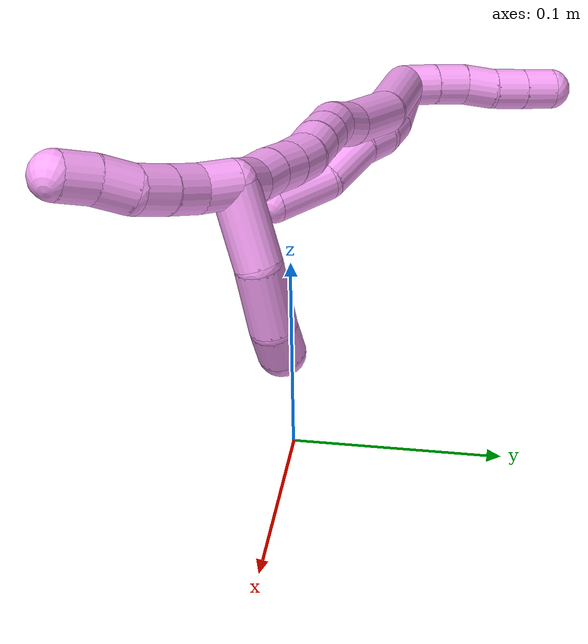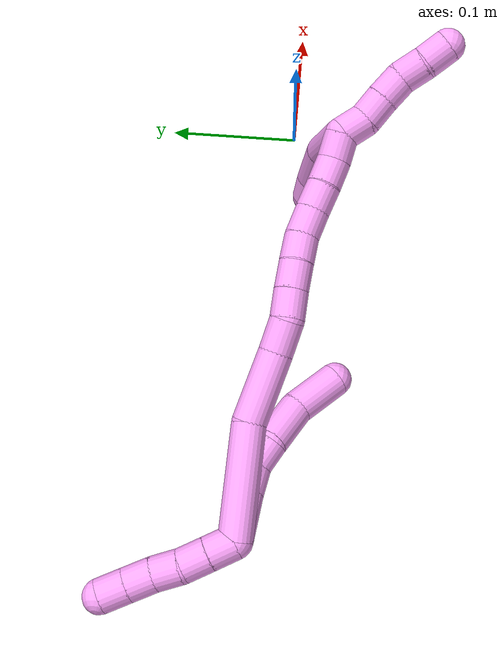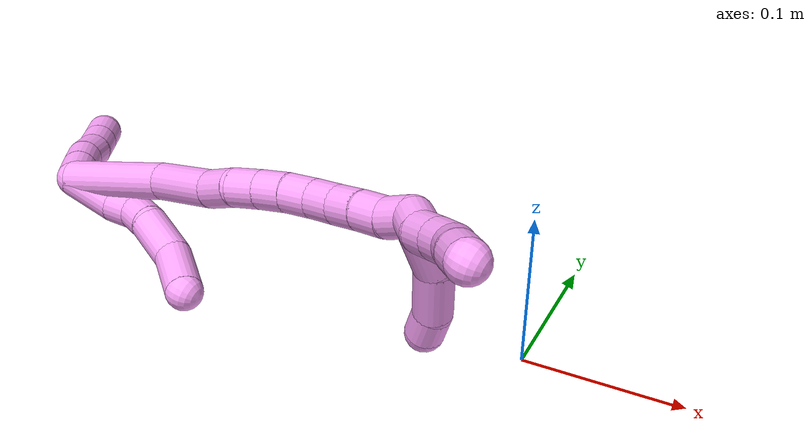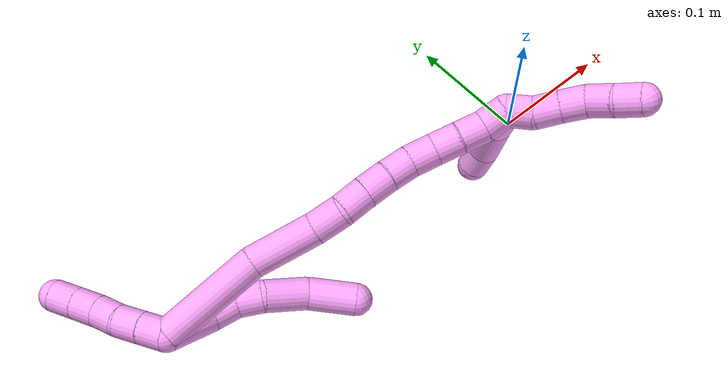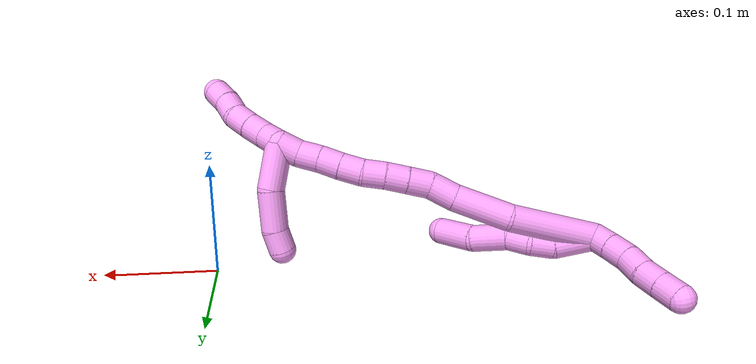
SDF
<sdf version="1.7">
 <world name="default">
  <model name="4">
   <static>0</static>
   <link name="4">
    <collision name="collision-cylinder-e_1_2_8">
     <pose>-0.000438 -0.000678 -0.01861 3.10517 -0.023537 -1.14731</pose>
     <geometry><cylinder><radius>0.0125</radius><length>0.037254</length></cylinder></geometry>
     <surface>
      <friction><ode><mu>1.16</mu><mu2>1.16</mu2><slip1>0</slip1><slip2>0</slip2></ode></friction>
      <contact><ode><kp>1e+06</kp><kd>1</kd><max_vel>0</max_vel><min_depth>0.001</min_depth></ode></contact>
     </surface>
    </collision>
    <visual name="visual-cylinder-e_1_2_8">
     <pose>-0.000438 -0.000678 -0.01861 3.10517 -0.023537 -1.14731</pose>
     <geometry><cylinder><radius>0.0125</radius><length>0.037254</length></cylinder></geometry>
     <material><ambient>1 0.65098 0.996078 1</ambient></material>
    </visual>
    <collision name="collision-cylinder-e_2_8_9">
     <pose>0.002433 -0.002076 -0.047156 3.06926 0.320768 2.70149</pose>
     <geometry><cylinder><radius>0.0125</radius><length>0.020998</length></cylinder></geometry>
     <surface>
      <friction><ode><mu>1.16</mu><mu2>1.16</mu2><slip1>0</slip1><slip2>0</slip2></ode></friction>
      <contact><ode><kp>1e+06</kp><kd>1</kd><max_vel>0</max_vel><min_depth>0.001</min_depth></ode></contact>
     </surface>
    </collision>
    <visual name="visual-cylinder-e_2_8_9">
     <pose>0.002433 -0.002076 -0.047156 3.06926 0.320768 2.70149</pose>
     <geometry><cylinder><radius>0.0125</radius><length>0.020998</length></cylinder></geometry>
     <material><ambient>1 0.65098 0.996078 1</ambient></material>
    </visual>
    <collision name="collision-cylinder-e_3_9_10">
     <pose>0.009146 -0.006688 -0.065803 2.72136 0.342568 1.36294</pose>
     <geometry><cylinder><radius>0.0125</radius><length>0.020255</length></cylinder></geometry>
     <surface>
      <friction><ode><mu>1.16</mu><mu2>1.16</mu2><slip1>0</slip1><slip2>0</slip2></ode></friction>
      <contact><ode><kp>1e+06</kp><kd>1</kd><max_vel>0</max_vel><min_depth>0.001</min_depth></ode></contact>
     </surface>
    </collision>
    <visual name="visual-cylinder-e_3_9_10">
     <pose>0.009146 -0.006688 -0.065803 2.72136 0.342568 1.36294</pose>
     <geometry><cylinder><radius>0.0125</radius><length>0.020255</length></cylinder></geometry>
     <material><ambient>1 0.65098 0.996078 1</ambient></material>
    </visual>
    <collision name="collision-cylinder-e_4_10_11">
     <pose>0.013009 -0.017616 -0.09017 2.71925 0.026905 0.125349</pose>
     <geometry><cylinder><radius>0.0125</radius><length>0.034347</length></cylinder></geometry>
     <surface>
      <friction><ode><mu>1.16</mu><mu2>1.16</mu2><slip1>0</slip1><slip2>0</slip2></ode></friction>
      <contact><ode><kp>1e+06</kp><kd>1</kd><max_vel>0</max_vel><min_depth>0.001</min_depth></ode></contact>
     </surface>
    </collision>
    <visual name="visual-cylinder-e_4_10_11">
     <pose>0.013009 -0.017616 -0.09017 2.71925 0.026905 0.125349</pose>
     <geometry><cylinder><radius>0.0125</radius><length>0.034347</length></cylinder></geometry>
     <material><ambient>1 0.65098 0.996078 1</ambient></material>
    </visual>
    <collision name="collision-cylinder-e_5_11_6">
     <pose>0.017037 -0.036632 -0.119568 2.42456 0.193193 0.506102</pose>
     <geometry><cylinder><radius>0.0125</radius><length>0.037147</length></cylinder></geometry>
     <surface>
      <friction><ode><mu>1.16</mu><mu2>1.16</mu2><slip1>0</slip1><slip2>0</slip2></ode></friction>
      <contact><ode><kp>1e+06</kp><kd>1</kd><max_vel>0</max_vel><min_depth>0.001</min_depth></ode></contact>
     </surface>
    </collision>
    <visual name="visual-cylinder-e_5_11_6">
     <pose>0.017037 -0.036632 -0.119568 2.42456 0.193193 0.506102</pose>
     <geometry><cylinder><radius>0.0125</radius><length>0.037147</length></cylinder></geometry>
     <material><ambient>1 0.65098 0.996078 1</ambient></material>
    </visual>
    <collision name="collision-cylinder-e_1_2_12">
     <pose>-0.003798 0.007836 0.004916 -1.01049 -0.389592 0.217404</pose>
     <geometry><cylinder><radius>0.0125</radius><length>0.02</length></cylinder></geometry>
     <surface>
      <friction><ode><mu>1.16</mu><mu2>1.16</mu2><slip1>0</slip1><slip2>0</slip2></ode></friction>
      <contact><ode><kp>1e+06</kp><kd>1</kd><max_vel>0</max_vel><min_depth>0.001</min_depth></ode></contact>
     </surface>
    </collision>
    <visual name="visual-cylinder-e_1_2_12">
     <pose>-0.003798 0.007836 0.004916 -1.01049 -0.389592 0.217404</pose>
     <geometry><cylinder><radius>0.0125</radius><length>0.02</length></cylinder></geometry>
     <material><ambient>1 0.65098 0.996078 1</ambient></material>
    </visual>
    <collision name="collision-cylinder-e_2_12_13">
     <pose>-0.011649 0.023483 0.014582 -1.02448 -0.417337 0.23702</pose>
     <geometry><cylinder><radius>0.0125</radius><length>0.02</length></cylinder></geometry>
     <surface>
      <friction><ode><mu>1.16</mu><mu2>1.16</mu2><slip1>0</slip1><slip2>0</slip2></ode></friction>
      <contact><ode><kp>1e+06</kp><kd>1</kd><max_vel>0</max_vel><min_depth>0.001</min_depth></ode></contact>
     </surface>
    </collision>
    <visual name="visual-cylinder-e_2_12_13">
     <pose>-0.011649 0.023483 0.014582 -1.02448 -0.417337 0.23702</pose>
     <geometry><cylinder><radius>0.0125</radius><length>0.02</length></cylinder></geometry>
     <material><ambient>1 0.65098 0.996078 1</ambient></material>
    </visual>
    <collision name="collision-cylinder-e_3_13_14">
     <pose>-0.020375 0.039589 0.022394 -1.21713 -0.486167 0.342207</pose>
     <geometry><cylinder><radius>0.0125</radius><length>0.02</length></cylinder></geometry>
     <surface>
      <friction><ode><mu>1.16</mu><mu2>1.16</mu2><slip1>0</slip1><slip2>0</slip2></ode></friction>
      <contact><ode><kp>1e+06</kp><kd>1</kd><max_vel>0</max_vel><min_depth>0.001</min_depth></ode></contact>
     </surface>
    </collision>
    <visual name="visual-cylinder-e_3_13_14">
     <pose>-0.020375 0.039589 0.022394 -1.21713 -0.486167 0.342207</pose>
     <geometry><cylinder><radius>0.0125</radius><length>0.02</length></cylinder></geometry>
     <material><ambient>1 0.65098 0.996078 1</ambient></material>
    </visual>
    <collision name="collision-cylinder-e_4_14_15">
     <pose>-0.02899 0.055952 0.029853 -1.07186 -0.405287 0.242854</pose>
     <geometry><cylinder><radius>0.0125</radius><length>0.02</length></cylinder></geometry>
     <surface>
      <friction><ode><mu>1.16</mu><mu2>1.16</mu2><slip1>0</slip1><slip2>0</slip2></ode></friction>
      <contact><ode><kp>1e+06</kp><kd>1</kd><max_vel>0</max_vel><min_depth>0.001</min_depth></ode></contact>
     </surface>
    </collision>
    <visual name="visual-cylinder-e_4_14_15">
     <pose>-0.02899 0.055952 0.029853 -1.07186 -0.405287 0.242854</pose>
     <geometry><cylinder><radius>0.0125</radius><length>0.02</length></cylinder></geometry>
     <material><ambient>1 0.65098 0.996078 1</ambient></material>
    </visual>
    <collision name="collision-cylinder-e_5_15_5">
     <pose>-0.036806 0.072089 0.038713 -1.06549 -0.397731 0.236539</pose>
     <geometry><cylinder><radius>0.0125</radius><length>0.02</length></cylinder></geometry>
     <surface>
      <friction><ode><mu>1.16</mu><mu2>1.16</mu2><slip1>0</slip1><slip2>0</slip2></ode></friction>
      <contact><ode><kp>1e+06</kp><kd>1</kd><max_vel>0</max_vel><min_depth>0.001</min_depth></ode></contact>
     </surface>
    </collision>
    <visual name="visual-cylinder-e_5_15_5">
     <pose>-0.036806 0.072089 0.038713 -1.06549 -0.397731 0.236539</pose>
     <geometry><cylinder><radius>0.0125</radius><length>0.02</length></cylinder></geometry>
     <material><ambient>1 0.65098 0.996078 1</ambient></material>
    </visual>
    <collision name="collision-cylinder-e_1_2_16">
     <pose>0.017467 0.004668 -0.036199 -3.01334 0.446347 -2.59012</pose>
     <geometry><cylinder><radius>0.0125</radius><length>0.080926</length></cylinder></geometry>
     <surface>
      <friction><ode><mu>1.16</mu><mu2>1.16</mu2><slip1>0</slip1><slip2>0</slip2></ode></friction>
      <contact><ode><kp>1e+06</kp><kd>1</kd><max_vel>0</max_vel><min_depth>0.001</min_depth></ode></contact>
     </surface>
    </collision>
    <visual name="visual-cylinder-e_1_2_16">
     <pose>0.017467 0.004668 -0.036199 -3.01334 0.446347 -2.59012</pose>
     <geometry><cylinder><radius>0.0125</radius><length>0.080926</length></cylinder></geometry>
     <material><ambient>1 0.65098 0.996078 1</ambient></material>
    </visual>
    <collision name="collision-cylinder-e_2_16_17">
     <pose>0.048145 0.006044 -0.094656 2.99472 0.530939 2.61307</pose>
     <geometry><cylinder><radius>0.0125</radius><length>0.052183</length></cylinder></geometry>
     <surface>
      <friction><ode><mu>1.16</mu><mu2>1.16</mu2><slip1>0</slip1><slip2>0</slip2></ode></friction>
      <contact><ode><kp>1e+06</kp><kd>1</kd><max_vel>0</max_vel><min_depth>0.001</min_depth></ode></contact>
     </surface>
    </collision>
    <visual name="visual-cylinder-e_2_16_17">
     <pose>0.048145 0.006044 -0.094656 2.99472 0.530939 2.61307</pose>
     <geometry><cylinder><radius>0.0125</radius><length>0.052183</length></cylinder></geometry>
     <material><ambient>1 0.65098 0.996078 1</ambient></material>
    </visual>
    <collision name="collision-cylinder-e_3_17_18">
     <pose>0.068968 0.001738 -0.126404 3.0352 0.673224 2.8396</pose>
     <geometry><cylinder><radius>0.0125</radius><length>0.024418</length></cylinder></geometry>
     <surface>
      <friction><ode><mu>1.16</mu><mu2>1.16</mu2><slip1>0</slip1><slip2>0</slip2></ode></friction>
      <contact><ode><kp>1e+06</kp><kd>1</kd><max_vel>0</max_vel><min_depth>0.001</min_depth></ode></contact>
     </surface>
    </collision>
    <visual name="visual-cylinder-e_3_17_18">
     <pose>0.068968 0.001738 -0.126404 3.0352 0.673224 2.8396</pose>
     <geometry><cylinder><radius>0.0125</radius><length>0.024418</length></cylinder></geometry>
     <material><ambient>1 0.65098 0.996078 1</ambient></material>
    </visual>
    <collision name="collision-cylinder-e_4_18_19">
     <pose>0.080956 0.001638 -0.14545 -3.04623 0.427634 -2.70895</pose>
     <geometry><cylinder><radius>0.0125</radius><length>0.021097</length></cylinder></geometry>
     <surface>
      <friction><ode><mu>1.16</mu><mu2>1.16</mu2><slip1>0</slip1><slip2>0</slip2></ode></friction>
      <contact><ode><kp>1e+06</kp><kd>1</kd><max_vel>0</max_vel><min_depth>0.001</min_depth></ode></contact>
     </surface>
    </collision>
    <visual name="visual-cylinder-e_4_18_19">
     <pose>0.080956 0.001638 -0.14545 -3.04623 0.427634 -2.70895</pose>
     <geometry><cylinder><radius>0.0125</radius><length>0.021097</length></cylinder></geometry>
     <material><ambient>1 0.65098 0.996078 1</ambient></material>
    </visual>
    <collision name="collision-cylinder-e_5_19_20">
     <pose>0.089492 0.002988 -0.164327 -3.0949 0.419518 -2.92311</pose>
     <geometry><cylinder><radius>0.0125</radius><length>0.020436</length></cylinder></geometry>
     <surface>
      <friction><ode><mu>1.16</mu><mu2>1.16</mu2><slip1>0</slip1><slip2>0</slip2></ode></friction>
      <contact><ode><kp>1e+06</kp><kd>1</kd><max_vel>0</max_vel><min_depth>0.001</min_depth></ode></contact>
     </surface>
    </collision>
    <visual name="visual-cylinder-e_5_19_20">
     <pose>0.089492 0.002988 -0.164327 -3.0949 0.419518 -2.92311</pose>
     <geometry><cylinder><radius>0.0125</radius><length>0.020436</length></cylinder></geometry>
     <material><ambient>1 0.65098 0.996078 1</ambient></material>
    </visual>
    <collision name="collision-cylinder-e_6_20_21">
     <pose>0.096977 0.003554 -0.183112 -3.1278 0.3376 -3.06071</pose>
     <geometry><cylinder><radius>0.0125</radius><length>0.020059</length></cylinder></geometry>
     <surface>
      <friction><ode><mu>1.16</mu><mu2>1.16</mu2><slip1>0</slip1><slip2>0</slip2></ode></friction>
      <contact><ode><kp>1e+06</kp><kd>1</kd><max_vel>0</max_vel><min_depth>0.001</min_depth></ode></contact>
     </surface>
    </collision>
    <visual name="visual-cylinder-e_6_20_21">
     <pose>0.096977 0.003554 -0.183112 -3.1278 0.3376 -3.06071</pose>
     <geometry><cylinder><radius>0.0125</radius><length>0.020059</length></cylinder></geometry>
     <material><ambient>1 0.65098 0.996078 1</ambient></material>
    </visual>
    <collision name="collision-cylinder-e_7_21_22">
     <pose>0.104804 0.002112 -0.201649 2.97007 0.454927 2.43035</pose>
     <geometry><cylinder><radius>0.0125</radius><length>0.020505</length></cylinder></geometry>
     <surface>
      <friction><ode><mu>1.16</mu><mu2>1.16</mu2><slip1>0</slip1><slip2>0</slip2></ode></friction>
      <contact><ode><kp>1e+06</kp><kd>1</kd><max_vel>0</max_vel><min_depth>0.001</min_depth></ode></contact>
     </surface>
    </collision>
    <visual name="visual-cylinder-e_7_21_22">
     <pose>0.104804 0.002112 -0.201649 2.97007 0.454927 2.43035</pose>
     <geometry><cylinder><radius>0.0125</radius><length>0.020505</length></cylinder></geometry>
     <material><ambient>1 0.65098 0.996078 1</ambient></material>
    </visual>
    <collision name="collision-cylinder-e_8_22_23">
     <pose>0.114199 -0.001298 -0.21931 2.93063 0.50816 2.36735</pose>
     <geometry><cylinder><radius>0.0125</radius><length>0.020102</length></cylinder></geometry>
     <surface>
      <friction><ode><mu>1.16</mu><mu2>1.16</mu2><slip1>0</slip1><slip2>0</slip2></ode></friction>
      <contact><ode><kp>1e+06</kp><kd>1</kd><max_vel>0</max_vel><min_depth>0.001</min_depth></ode></contact>
     </surface>
    </collision>
    <visual name="visual-cylinder-e_8_22_23">
     <pose>0.114199 -0.001298 -0.21931 2.93063 0.50816 2.36735</pose>
     <geometry><cylinder><radius>0.0125</radius><length>0.020102</length></cylinder></geometry>
     <material><ambient>1 0.65098 0.996078 1</ambient></material>
    </visual>
    <collision name="collision-cylinder-e_9_23_24">
     <pose>0.123261 -0.004708 -0.236895 2.96875 0.428383 2.38356</pose>
     <geometry><cylinder><radius>0.0125</radius><length>0.020084</length></cylinder></geometry>
     <surface>
      <friction><ode><mu>1.16</mu><mu2>1.16</mu2><slip1>0</slip1><slip2>0</slip2></ode></friction>
      <contact><ode><kp>1e+06</kp><kd>1</kd><max_vel>0</max_vel><min_depth>0.001</min_depth></ode></contact>
     </surface>
    </collision>
    <visual name="visual-cylinder-e_9_23_24">
     <pose>0.123261 -0.004708 -0.236895 2.96875 0.428383 2.38356</pose>
     <geometry><cylinder><radius>0.0125</radius><length>0.020084</length></cylinder></geometry>
     <material><ambient>1 0.65098 0.996078 1</ambient></material>
    </visual>
    <collision name="collision-cylinder-e_10_24_1">
     <pose>0.133648 -0.006703 -0.253836 3.08822 0.663336 2.9869</pose>
     <geometry><cylinder><radius>0.0125</radius><length>0.020189</length></cylinder></geometry>
     <surface>
      <friction><ode><mu>1.16</mu><mu2>1.16</mu2><slip1>0</slip1><slip2>0</slip2></ode></friction>
      <contact><ode><kp>1e+06</kp><kd>1</kd><max_vel>0</max_vel><min_depth>0.001</min_depth></ode></contact>
     </surface>
    </collision>
    <visual name="visual-cylinder-e_10_24_1">
     <pose>0.133648 -0.006703 -0.253836 3.08822 0.663336 2.9869</pose>
     <geometry><cylinder><radius>0.0125</radius><length>0.020189</length></cylinder></geometry>
     <material><ambient>1 0.65098 0.996078 1</ambient></material>
    </visual>
    <collision name="collision-cylinder-e_1_1_25">
     <pose>0.120506 -0.003892 -0.269767 -2.75677 -1.15191 2.55868</pose>
     <geometry><cylinder><radius>0.0125</radius><length>0.042379</length></cylinder></geometry>
     <surface>
      <friction><ode><mu>1.16</mu><mu2>1.16</mu2><slip1>0</slip1><slip2>0</slip2></ode></friction>
      <contact><ode><kp>1e+06</kp><kd>1</kd><max_vel>0</max_vel><min_depth>0.001</min_depth></ode></contact>
     </surface>
    </collision>
    <visual name="visual-cylinder-e_1_1_25">
     <pose>0.120506 -0.003892 -0.269767 -2.75677 -1.15191 2.55868</pose>
     <geometry><cylinder><radius>0.0125</radius><length>0.042379</length></cylinder></geometry>
     <material><ambient>1 0.65098 0.996078 1</ambient></material>
    </visual>
    <collision name="collision-cylinder-e_2_25_26">
     <pose>0.082624 -0.000918 -0.280212 3.0357 -1.43823 -3.02068</pose>
     <geometry><cylinder><radius>0.0125</radius><length>0.037377</length></cylinder></geometry>
     <surface>
      <friction><ode><mu>1.16</mu><mu2>1.16</mu2><slip1>0</slip1><slip2>0</slip2></ode></friction>
      <contact><ode><kp>1e+06</kp><kd>1</kd><max_vel>0</max_vel><min_depth>0.001</min_depth></ode></contact>
     </surface>
    </collision>
    <visual name="visual-cylinder-e_2_25_26">
     <pose>0.082624 -0.000918 -0.280212 3.0357 -1.43823 -3.02068</pose>
     <geometry><cylinder><radius>0.0125</radius><length>0.037377</length></cylinder></geometry>
     <material><ambient>1 0.65098 0.996078 1</ambient></material>
    </visual>
    <collision name="collision-cylinder-e_3_26_4">
     <pose>0.054047 -0.001664 -0.281589 0.42197 -1.45363 -0.376375</pose>
     <geometry><cylinder><radius>0.0125</radius><length>0.020244</length></cylinder></geometry>
     <surface>
      <friction><ode><mu>1.16</mu><mu2>1.16</mu2><slip1>0</slip1><slip2>0</slip2></ode></friction>
      <contact><ode><kp>1e+06</kp><kd>1</kd><max_vel>0</max_vel><min_depth>0.001</min_depth></ode></contact>
     </surface>
    </collision>
    <visual name="visual-cylinder-e_3_26_4">
     <pose>0.054047 -0.001664 -0.281589 0.42197 -1.45363 -0.376375</pose>
     <geometry><cylinder><radius>0.0125</radius><length>0.020244</length></cylinder></geometry>
     <material><ambient>1 0.65098 0.996078 1</ambient></material>
    </visual>
    <collision name="collision-cylinder-e_1_1_27">
     <pose>0.143695 -0.014023 -0.267924 2.29878 0.393202 0.836249</pose>
     <geometry><cylinder><radius>0.0125</radius><length>0.02</length></cylinder></geometry>
     <surface>
      <friction><ode><mu>1.16</mu><mu2>1.16</mu2><slip1>0</slip1><slip2>0</slip2></ode></friction>
      <contact><ode><kp>1e+06</kp><kd>1</kd><max_vel>0</max_vel><min_depth>0.001</min_depth></ode></contact>
     </surface>
    </collision>
    <visual name="visual-cylinder-e_1_1_27">
     <pose>0.143695 -0.014023 -0.267924 2.29878 0.393202 0.836249</pose>
     <geometry><cylinder><radius>0.0125</radius><length>0.02</length></cylinder></geometry>
     <material><ambient>1 0.65098 0.996078 1</ambient></material>
    </visual>
    <collision name="collision-cylinder-e_2_27_28">
     <pose>0.153247 -0.025185 -0.281075 2.59452 0.609028 1.68404</pose>
     <geometry><cylinder><radius>0.0125</radius><length>0.02</length></cylinder></geometry>
     <surface>
      <friction><ode><mu>1.16</mu><mu2>1.16</mu2><slip1>0</slip1><slip2>0</slip2></ode></friction>
      <contact><ode><kp>1e+06</kp><kd>1</kd><max_vel>0</max_vel><min_depth>0.001</min_depth></ode></contact>
     </surface>
    </collision>
    <visual name="visual-cylinder-e_2_27_28">
     <pose>0.153247 -0.025185 -0.281075 2.59452 0.609028 1.68404</pose>
     <geometry><cylinder><radius>0.0125</radius><length>0.02</length></cylinder></geometry>
     <material><ambient>1 0.65098 0.996078 1</ambient></material>
    </visual>
    <collision name="collision-cylinder-e_3_28_29">
     <pose>0.164842 -0.034176 -0.294652 2.51837 0.627795 1.57861</pose>
     <geometry><cylinder><radius>0.0125</radius><length>0.02</length></cylinder></geometry>
     <surface>
      <friction><ode><mu>1.16</mu><mu2>1.16</mu2><slip1>0</slip1><slip2>0</slip2></ode></friction>
      <contact><ode><kp>1e+06</kp><kd>1</kd><max_vel>0</max_vel><min_depth>0.001</min_depth></ode></contact>
     </surface>
    </collision>
    <visual name="visual-cylinder-e_3_28_29">
     <pose>0.164842 -0.034176 -0.294652 2.51837 0.627795 1.57861</pose>
     <geometry><cylinder><radius>0.0125</radius><length>0.02</length></cylinder></geometry>
     <material><ambient>1 0.65098 0.996078 1</ambient></material>
    </visual>
    <collision name="collision-cylinder-e_4_29_30">
     <pose>0.177261 -0.04546 -0.304981 2.09098 0.71356 1.14295</pose>
     <geometry><cylinder><radius>0.0125</radius><length>0.02</length></cylinder></geometry>
     <surface>
      <friction><ode><mu>1.16</mu><mu2>1.16</mu2><slip1>0</slip1><slip2>0</slip2></ode></friction>
      <contact><ode><kp>1e+06</kp><kd>1</kd><max_vel>0</max_vel><min_depth>0.001</min_depth></ode></contact>
     </surface>
    </collision>
    <visual name="visual-cylinder-e_4_29_30">
     <pose>0.177261 -0.04546 -0.304981 2.09098 0.71356 1.14295</pose>
     <geometry><cylinder><radius>0.0125</radius><length>0.02</length></cylinder></geometry>
     <material><ambient>1 0.65098 0.996078 1</ambient></material>
    </visual>
    <collision name="collision-cylinder-e_5_30_3">
     <pose>0.189624 -0.058253 -0.313965 2.26856 0.620897 1.20481</pose>
     <geometry><cylinder><radius>0.0125</radius><length>0.02</length></cylinder></geometry>
     <surface>
      <friction><ode><mu>1.16</mu><mu2>1.16</mu2><slip1>0</slip1><slip2>0</slip2></ode></friction>
      <contact><ode><kp>1e+06</kp><kd>1</kd><max_vel>0</max_vel><min_depth>0.001</min_depth></ode></contact>
     </surface>
    </collision>
    <visual name="visual-cylinder-e_5_30_3">
     <pose>0.189624 -0.058253 -0.313965 2.26856 0.620897 1.20481</pose>
     <geometry><cylinder><radius>0.0125</radius><length>0.02</length></cylinder></geometry>
     <material><ambient>1 0.65098 0.996078 1</ambient></material>
    </visual>
    <collision name="collision-sphere-3">
     <pose>0.195441 -0.064485 -0.319191 0 -0 0</pose>
     <geometry><sphere><radius>0.0125</radius></sphere></geometry>
     <surface>
      <friction><ode><mu>1.16</mu><mu2>1.16</mu2><slip1>0</slip1><slip2>0</slip2></ode></friction>
      <contact><ode><kp>1e+06</kp><kd>1</kd><max_vel>0</max_vel><min_depth>0.001</min_depth></ode></contact>
     </surface>
    </collision>
    <visual name="visual-sphere-3">
     <pose>0.195441 -0.064485 -0.319191 0 -0 0</pose>
     <geometry><sphere><radius>0.0125</radius></sphere></geometry>
     <material><ambient>1 0.65098 0.996078 1</ambient></material>
    </visual>
    <collision name="collision-sphere-30">
     <pose>0.183806 -0.05202 -0.308739 0 -0 0</pose>
     <geometry><sphere><radius>0.0125</radius></sphere></geometry>
     <surface>
      <friction><ode><mu>1.16</mu><mu2>1.16</mu2><slip1>0</slip1><slip2>0</slip2></ode></friction>
      <contact><ode><kp>1e+06</kp><kd>1</kd><max_vel>0</max_vel><min_depth>0.001</min_depth></ode></contact>
     </surface>
    </collision>
    <visual name="visual-sphere-30">
     <pose>0.183806 -0.05202 -0.308739 0 -0 0</pose>
     <geometry><sphere><radius>0.0125</radius></sphere></geometry>
     <material><ambient>1 0.65098 0.996078 1</ambient></material>
    </visual>
    <collision name="collision-sphere-29">
     <pose>0.170715 -0.038899 -0.301224 0 -0 0</pose>
     <geometry><sphere><radius>0.0125</radius></sphere></geometry>
     <surface>
      <friction><ode><mu>1.16</mu><mu2>1.16</mu2><slip1>0</slip1><slip2>0</slip2></ode></friction>
      <contact><ode><kp>1e+06</kp><kd>1</kd><max_vel>0</max_vel><min_depth>0.001</min_depth></ode></contact>
     </surface>
    </collision>
    <visual name="visual-sphere-29">
     <pose>0.170715 -0.038899 -0.301224 0 -0 0</pose>
     <geometry><sphere><radius>0.0125</radius></sphere></geometry>
     <material><ambient>1 0.65098 0.996078 1</ambient></material>
    </visual>
    <collision name="collision-sphere-28">
     <pose>0.158968 -0.029452 -0.28808 0 -0 0</pose>
     <geometry><sphere><radius>0.0125</radius></sphere></geometry>
     <surface>
      <friction><ode><mu>1.16</mu><mu2>1.16</mu2><slip1>0</slip1><slip2>0</slip2></ode></friction>
      <contact><ode><kp>1e+06</kp><kd>1</kd><max_vel>0</max_vel><min_depth>0.001</min_depth></ode></contact>
     </surface>
    </collision>
    <visual name="visual-sphere-28">
     <pose>0.158968 -0.029452 -0.28808 0 -0 0</pose>
     <geometry><sphere><radius>0.0125</radius></sphere></geometry>
     <material><ambient>1 0.65098 0.996078 1</ambient></material>
    </visual>
    <collision name="collision-sphere-27">
     <pose>0.147527 -0.020919 -0.27407 0 -0 0</pose>
     <geometry><sphere><radius>0.0125</radius></sphere></geometry>
     <surface>
      <friction><ode><mu>1.16</mu><mu2>1.16</mu2><slip1>0</slip1><slip2>0</slip2></ode></friction>
      <contact><ode><kp>1e+06</kp><kd>1</kd><max_vel>0</max_vel><min_depth>0.001</min_depth></ode></contact>
     </surface>
    </collision>
    <visual name="visual-sphere-27">
     <pose>0.147527 -0.020919 -0.27407 0 -0 0</pose>
     <geometry><sphere><radius>0.0125</radius></sphere></geometry>
     <material><ambient>1 0.65098 0.996078 1</ambient></material>
    </visual>
    <collision name="collision-sphere-4">
     <pose>0.043995 -0.002148 -0.280509 0 -0 0</pose>
     <geometry><sphere><radius>0.0125</radius></sphere></geometry>
     <surface>
      <friction><ode><mu>1.16</mu><mu2>1.16</mu2><slip1>0</slip1><slip2>0</slip2></ode></friction>
      <contact><ode><kp>1e+06</kp><kd>1</kd><max_vel>0</max_vel><min_depth>0.001</min_depth></ode></contact>
     </surface>
    </collision>
    <visual name="visual-sphere-4">
     <pose>0.043995 -0.002148 -0.280509 0 -0 0</pose>
     <geometry><sphere><radius>0.0125</radius></sphere></geometry>
     <material><ambient>1 0.65098 0.996078 1</ambient></material>
    </visual>
    <collision name="collision-sphere-26">
     <pose>0.0641 -0.001179 -0.282668 0 -0 0</pose>
     <geometry><sphere><radius>0.0125</radius></sphere></geometry>
     <surface>
      <friction><ode><mu>1.16</mu><mu2>1.16</mu2><slip1>0</slip1><slip2>0</slip2></ode></friction>
      <contact><ode><kp>1e+06</kp><kd>1</kd><max_vel>0</max_vel><min_depth>0.001</min_depth></ode></contact>
     </surface>
    </collision>
    <visual name="visual-sphere-26">
     <pose>0.0641 -0.001179 -0.282668 0 -0 0</pose>
     <geometry><sphere><radius>0.0125</radius></sphere></geometry>
     <material><ambient>1 0.65098 0.996078 1</ambient></material>
    </visual>
    <collision name="collision-sphere-25">
     <pose>0.101148 -0.000657 -0.277755 0 -0 0</pose>
     <geometry><sphere><radius>0.0125</radius></sphere></geometry>
     <surface>
      <friction><ode><mu>1.16</mu><mu2>1.16</mu2><slip1>0</slip1><slip2>0</slip2></ode></friction>
      <contact><ode><kp>1e+06</kp><kd>1</kd><max_vel>0</max_vel><min_depth>0.001</min_depth></ode></contact>
     </surface>
    </collision>
    <visual name="visual-sphere-25">
     <pose>0.101148 -0.000657 -0.277755 0 -0 0</pose>
     <geometry><sphere><radius>0.0125</radius></sphere></geometry>
     <material><ambient>1 0.65098 0.996078 1</ambient></material>
    </visual>
    <collision name="collision-sphere-1">
     <pose>0.139864 -0.007128 -0.261778 0 -0 0</pose>
     <geometry><sphere><radius>0.0125</radius></sphere></geometry>
     <surface>
      <friction><ode><mu>1.16</mu><mu2>1.16</mu2><slip1>0</slip1><slip2>0</slip2></ode></friction>
      <contact><ode><kp>1e+06</kp><kd>1</kd><max_vel>0</max_vel><min_depth>0.001</min_depth></ode></contact>
     </surface>
    </collision>
    <visual name="visual-sphere-1">
     <pose>0.139864 -0.007128 -0.261778 0 -0 0</pose>
     <geometry><sphere><radius>0.0125</radius></sphere></geometry>
     <material><ambient>1 0.65098 0.996078 1</ambient></material>
    </visual>
    <collision name="collision-sphere-24">
     <pose>0.127432 -0.006279 -0.245893 0 -0 0</pose>
     <geometry><sphere><radius>0.0125</radius></sphere></geometry>
     <surface>
      <friction><ode><mu>1.16</mu><mu2>1.16</mu2><slip1>0</slip1><slip2>0</slip2></ode></friction>
      <contact><ode><kp>1e+06</kp><kd>1</kd><max_vel>0</max_vel><min_depth>0.001</min_depth></ode></contact>
     </surface>
    </collision>
    <visual name="visual-sphere-24">
     <pose>0.127432 -0.006279 -0.245893 0 -0 0</pose>
     <geometry><sphere><radius>0.0125</radius></sphere></geometry>
     <material><ambient>1 0.65098 0.996078 1</ambient></material>
    </visual>
    <collision name="collision-sphere-23">
     <pose>0.11909 -0.003137 -0.227896 0 -0 0</pose>
     <geometry><sphere><radius>0.0125</radius></sphere></geometry>
     <surface>
      <friction><ode><mu>1.16</mu><mu2>1.16</mu2><slip1>0</slip1><slip2>0</slip2></ode></friction>
      <contact><ode><kp>1e+06</kp><kd>1</kd><max_vel>0</max_vel><min_depth>0.001</min_depth></ode></contact>
     </surface>
    </collision>
    <visual name="visual-sphere-23">
     <pose>0.11909 -0.003137 -0.227896 0 -0 0</pose>
     <geometry><sphere><radius>0.0125</radius></sphere></geometry>
     <material><ambient>1 0.65098 0.996078 1</ambient></material>
    </visual>
    <collision name="collision-sphere-22">
     <pose>0.109309 0.00054 -0.210724 0 -0 0</pose>
     <geometry><sphere><radius>0.0125</radius></sphere></geometry>
     <surface>
      <friction><ode><mu>1.16</mu><mu2>1.16</mu2><slip1>0</slip1><slip2>0</slip2></ode></friction>
      <contact><ode><kp>1e+06</kp><kd>1</kd><max_vel>0</max_vel><min_depth>0.001</min_depth></ode></contact>
     </surface>
    </collision>
    <visual name="visual-sphere-22">
     <pose>0.109309 0.00054 -0.210724 0 -0 0</pose>
     <geometry><sphere><radius>0.0125</radius></sphere></geometry>
     <material><ambient>1 0.65098 0.996078 1</ambient></material>
    </visual>
    <collision name="collision-sphere-21">
     <pose>0.100299 0.003684 -0.192575 0 -0 0</pose>
     <geometry><sphere><radius>0.0125</radius></sphere></geometry>
     <surface>
      <friction><ode><mu>1.16</mu><mu2>1.16</mu2><slip1>0</slip1><slip2>0</slip2></ode></friction>
      <contact><ode><kp>1e+06</kp><kd>1</kd><max_vel>0</max_vel><min_depth>0.001</min_depth></ode></contact>
     </surface>
    </collision>
    <visual name="visual-sphere-21">
     <pose>0.100299 0.003684 -0.192575 0 -0 0</pose>
     <geometry><sphere><radius>0.0125</radius></sphere></geometry>
     <material><ambient>1 0.65098 0.996078 1</ambient></material>
    </visual>
    <collision name="collision-sphere-6">
     <pose>0.020603 -0.04861 -0.133308 0 -0 0</pose>
     <geometry><sphere><radius>0.0125</radius></sphere></geometry>
     <surface>
      <friction><ode><mu>1.16</mu><mu2>1.16</mu2><slip1>0</slip1><slip2>0</slip2></ode></friction>
      <contact><ode><kp>1e+06</kp><kd>1</kd><max_vel>0</max_vel><min_depth>0.001</min_depth></ode></contact>
     </surface>
    </collision>
    <visual name="visual-sphere-6">
     <pose>0.020603 -0.04861 -0.133308 0 -0 0</pose>
     <geometry><sphere><radius>0.0125</radius></sphere></geometry>
     <material><ambient>1 0.65098 0.996078 1</ambient></material>
    </visual>
    <collision name="collision-sphere-11">
     <pose>0.013471 -0.024653 -0.105829 0 -0 0</pose>
     <geometry><sphere><radius>0.0125</radius></sphere></geometry>
     <surface>
      <friction><ode><mu>1.16</mu><mu2>1.16</mu2><slip1>0</slip1><slip2>0</slip2></ode></friction>
      <contact><ode><kp>1e+06</kp><kd>1</kd><max_vel>0</max_vel><min_depth>0.001</min_depth></ode></contact>
     </surface>
    </collision>
    <visual name="visual-sphere-11">
     <pose>0.013471 -0.024653 -0.105829 0 -0 0</pose>
     <geometry><sphere><radius>0.0125</radius></sphere></geometry>
     <material><ambient>1 0.65098 0.996078 1</ambient></material>
    </visual>
    <collision name="collision-sphere-10">
     <pose>0.012547 -0.01058 -0.074511 0 -0 0</pose>
     <geometry><sphere><radius>0.0125</radius></sphere></geometry>
     <surface>
      <friction><ode><mu>1.16</mu><mu2>1.16</mu2><slip1>0</slip1><slip2>0</slip2></ode></friction>
      <contact><ode><kp>1e+06</kp><kd>1</kd><max_vel>0</max_vel><min_depth>0.001</min_depth></ode></contact>
     </surface>
    </collision>
    <visual name="visual-sphere-10">
     <pose>0.012547 -0.01058 -0.074511 0 -0 0</pose>
     <geometry><sphere><radius>0.0125</radius></sphere></geometry>
     <material><ambient>1 0.65098 0.996078 1</ambient></material>
    </visual>
    <collision name="collision-sphere-9">
     <pose>0.005744 -0.002796 -0.057094 0 -0 0</pose>
     <geometry><sphere><radius>0.0125</radius></sphere></geometry>
     <surface>
      <friction><ode><mu>1.16</mu><mu2>1.16</mu2><slip1>0</slip1><slip2>0</slip2></ode></friction>
      <contact><ode><kp>1e+06</kp><kd>1</kd><max_vel>0</max_vel><min_depth>0.001</min_depth></ode></contact>
     </surface>
    </collision>
    <visual name="visual-sphere-9">
     <pose>0.005744 -0.002796 -0.057094 0 -0 0</pose>
     <geometry><sphere><radius>0.0125</radius></sphere></geometry>
     <material><ambient>1 0.65098 0.996078 1</ambient></material>
    </visual>
    <collision name="collision-sphere-2">
     <geometry><sphere><radius>0.0125</radius></sphere></geometry>
     <surface>
      <friction><ode><mu>1.16</mu><mu2>1.16</mu2><slip1>0</slip1><slip2>0</slip2></ode></friction>
      <contact><ode><kp>1e+06</kp><kd>1</kd><max_vel>0</max_vel><min_depth>0.001</min_depth></ode></contact>
     </surface>
    </collision>
    <visual name="visual-sphere-2">
     <geometry><sphere><radius>0.0125</radius></sphere></geometry>
     <material><ambient>1 0.65098 0.996078 1</ambient></material>
    </visual>
    <collision name="collision-sphere-19">
     <pose>0.08533 0.002552 -0.155005 0 -0 0</pose>
     <geometry><sphere><radius>0.0125</radius></sphere></geometry>
     <surface>
      <friction><ode><mu>1.16</mu><mu2>1.16</mu2><slip1>0</slip1><slip2>0</slip2></ode></friction>
      <contact><ode><kp>1e+06</kp><kd>1</kd><max_vel>0</max_vel><min_depth>0.001</min_depth></ode></contact>
     </surface>
    </collision>
    <visual name="visual-sphere-19">
     <pose>0.08533 0.002552 -0.155005 0 -0 0</pose>
     <geometry><sphere><radius>0.0125</radius></sphere></geometry>
     <material><ambient>1 0.65098 0.996078 1</ambient></material>
    </visual>
    <collision name="collision-sphere-8">
     <pose>-0.000877 -0.001356 -0.037219 0 -0 0</pose>
     <geometry><sphere><radius>0.0125</radius></sphere></geometry>
     <surface>
      <friction><ode><mu>1.16</mu><mu2>1.16</mu2><slip1>0</slip1><slip2>0</slip2></ode></friction>
      <contact><ode><kp>1e+06</kp><kd>1</kd><max_vel>0</max_vel><min_depth>0.001</min_depth></ode></contact>
     </surface>
    </collision>
    <visual name="visual-sphere-8">
     <pose>-0.000877 -0.001356 -0.037219 0 -0 0</pose>
     <geometry><sphere><radius>0.0125</radius></sphere></geometry>
     <material><ambient>1 0.65098 0.996078 1</ambient></material>
    </visual>
    <collision name="collision-sphere-12">
     <pose>-0.007596 0.015672 0.009832 0 -0 0</pose>
     <geometry><sphere><radius>0.0125</radius></sphere></geometry>
     <surface>
      <friction><ode><mu>1.16</mu><mu2>1.16</mu2><slip1>0</slip1><slip2>0</slip2></ode></friction>
      <contact><ode><kp>1e+06</kp><kd>1</kd><max_vel>0</max_vel><min_depth>0.001</min_depth></ode></contact>
     </surface>
    </collision>
    <visual name="visual-sphere-12">
     <pose>-0.007596 0.015672 0.009832 0 -0 0</pose>
     <geometry><sphere><radius>0.0125</radius></sphere></geometry>
     <material><ambient>1 0.65098 0.996078 1</ambient></material>
    </visual>
    <collision name="collision-sphere-13">
     <pose>-0.015703 0.031294 0.019331 0 -0 0</pose>
     <geometry><sphere><radius>0.0125</radius></sphere></geometry>
     <surface>
      <friction><ode><mu>1.16</mu><mu2>1.16</mu2><slip1>0</slip1><slip2>0</slip2></ode></friction>
      <contact><ode><kp>1e+06</kp><kd>1</kd><max_vel>0</max_vel><min_depth>0.001</min_depth></ode></contact>
     </surface>
    </collision>
    <visual name="visual-sphere-13">
     <pose>-0.015703 0.031294 0.019331 0 -0 0</pose>
     <geometry><sphere><radius>0.0125</radius></sphere></geometry>
     <material><ambient>1 0.65098 0.996078 1</ambient></material>
    </visual>
    <collision name="collision-sphere-14">
     <pose>-0.025048 0.047883 0.025456 0 -0 0</pose>
     <geometry><sphere><radius>0.0125</radius></sphere></geometry>
     <surface>
      <friction><ode><mu>1.16</mu><mu2>1.16</mu2><slip1>0</slip1><slip2>0</slip2></ode></friction>
      <contact><ode><kp>1e+06</kp><kd>1</kd><max_vel>0</max_vel><min_depth>0.001</min_depth></ode></contact>
     </surface>
    </collision>
    <visual name="visual-sphere-14">
     <pose>-0.025048 0.047883 0.025456 0 -0 0</pose>
     <geometry><sphere><radius>0.0125</radius></sphere></geometry>
     <material><ambient>1 0.65098 0.996078 1</ambient></material>
    </visual>
    <collision name="collision-sphere-15">
     <pose>-0.032933 0.064022 0.03425 0 -0 0</pose>
     <geometry><sphere><radius>0.0125</radius></sphere></geometry>
     <surface>
      <friction><ode><mu>1.16</mu><mu2>1.16</mu2><slip1>0</slip1><slip2>0</slip2></ode></friction>
      <contact><ode><kp>1e+06</kp><kd>1</kd><max_vel>0</max_vel><min_depth>0.001</min_depth></ode></contact>
     </surface>
    </collision>
    <visual name="visual-sphere-15">
     <pose>-0.032933 0.064022 0.03425 0 -0 0</pose>
     <geometry><sphere><radius>0.0125</radius></sphere></geometry>
     <material><ambient>1 0.65098 0.996078 1</ambient></material>
    </visual>
    <collision name="collision-sphere-5">
     <pose>-0.04068 0.080156 0.043176 0 -0 0</pose>
     <geometry><sphere><radius>0.0125</radius></sphere></geometry>
     <surface>
      <friction><ode><mu>1.16</mu><mu2>1.16</mu2><slip1>0</slip1><slip2>0</slip2></ode></friction>
      <contact><ode><kp>1e+06</kp><kd>1</kd><max_vel>0</max_vel><min_depth>0.001</min_depth></ode></contact>
     </surface>
    </collision>
    <visual name="visual-sphere-5">
     <pose>-0.04068 0.080156 0.043176 0 -0 0</pose>
     <geometry><sphere><radius>0.0125</radius></sphere></geometry>
     <material><ambient>1 0.65098 0.996078 1</ambient></material>
    </visual>
    <collision name="collision-sphere-16">
     <pose>0.034934 0.009337 -0.072398 0 -0 0</pose>
     <geometry><sphere><radius>0.0125</radius></sphere></geometry>
     <surface>
      <friction><ode><mu>1.16</mu><mu2>1.16</mu2><slip1>0</slip1><slip2>0</slip2></ode></friction>
      <contact><ode><kp>1e+06</kp><kd>1</kd><max_vel>0</max_vel><min_depth>0.001</min_depth></ode></contact>
     </surface>
    </collision>
    <visual name="visual-sphere-16">
     <pose>0.034934 0.009337 -0.072398 0 -0 0</pose>
     <geometry><sphere><radius>0.0125</radius></sphere></geometry>
     <material><ambient>1 0.65098 0.996078 1</ambient></material>
    </visual>
    <collision name="collision-sphere-17">
     <pose>0.061356 0.002751 -0.116913 0 -0 0</pose>
     <geometry><sphere><radius>0.0125</radius></sphere></geometry>
     <surface>
      <friction><ode><mu>1.16</mu><mu2>1.16</mu2><slip1>0</slip1><slip2>0</slip2></ode></friction>
      <contact><ode><kp>1e+06</kp><kd>1</kd><max_vel>0</max_vel><min_depth>0.001</min_depth></ode></contact>
     </surface>
    </collision>
    <visual name="visual-sphere-17">
     <pose>0.061356 0.002751 -0.116913 0 -0 0</pose>
     <geometry><sphere><radius>0.0125</radius></sphere></geometry>
     <material><ambient>1 0.65098 0.996078 1</ambient></material>
    </visual>
    <collision name="collision-sphere-18">
     <pose>0.076581 0.000724 -0.135895 0 -0 0</pose>
     <geometry><sphere><radius>0.0125</radius></sphere></geometry>
     <surface>
      <friction><ode><mu>1.16</mu><mu2>1.16</mu2><slip1>0</slip1><slip2>0</slip2></ode></friction>
      <contact><ode><kp>1e+06</kp><kd>1</kd><max_vel>0</max_vel><min_depth>0.001</min_depth></ode></contact>
     </surface>
    </collision>
    <visual name="visual-sphere-18">
     <pose>0.076581 0.000724 -0.135895 0 -0 0</pose>
     <geometry><sphere><radius>0.0125</radius></sphere></geometry>
     <material><ambient>1 0.65098 0.996078 1</ambient></material>
    </visual>
    <collision name="collision-sphere-20">
     <pose>0.093655 0.003423 -0.173649 0 -0 0</pose>
     <geometry><sphere><radius>0.0125</radius></sphere></geometry>
     <surface>
      <friction><ode><mu>1.16</mu><mu2>1.16</mu2><slip1>0</slip1><slip2>0</slip2></ode></friction>
      <contact><ode><kp>1e+06</kp><kd>1</kd><max_vel>0</max_vel><min_depth>0.001</min_depth></ode></contact>
     </surface>
    </collision>
    <visual name="visual-sphere-20">
     <pose>0.093655 0.003423 -0.173649 0 -0 0</pose>
     <geometry><sphere><radius>0.0125</radius></sphere></geometry>
     <material><ambient>1 0.65098 0.996078 1</ambient></material>
    </visual>
    <inertial>
     <pose>0.061121 -0.001702 -0.13958 0 -0 0</pose>
     <mass>0.75</mass>
     <inertia><ixx>-4e-05</ixx><ixy>0</ixy><ixz>0</ixz><iyy>7e-05</iyy><iyz>0</iyz><izz>-5.5e-05</izz></inertia>
    </inertial>
   </link>
   <pose>-0.339675 0.01713 0.027792 0.695437 -1.29676 -0.792525</pose>
  </model>
 </world>
</sdf>
